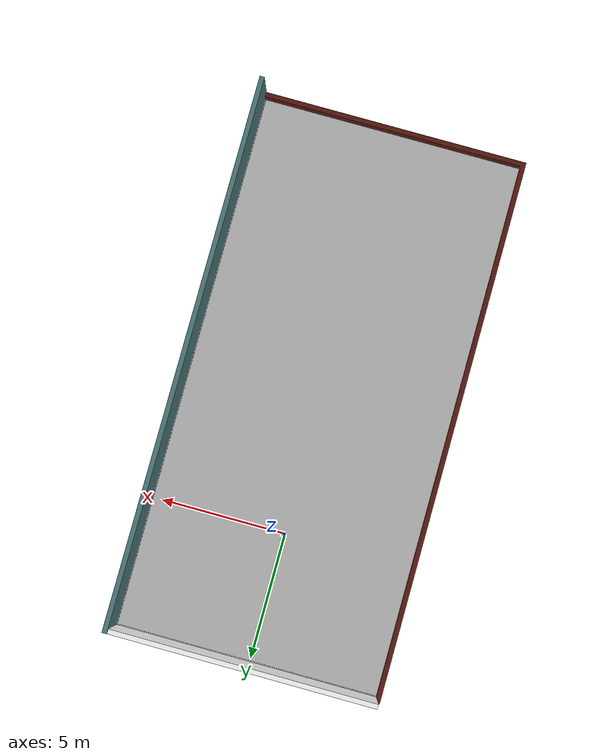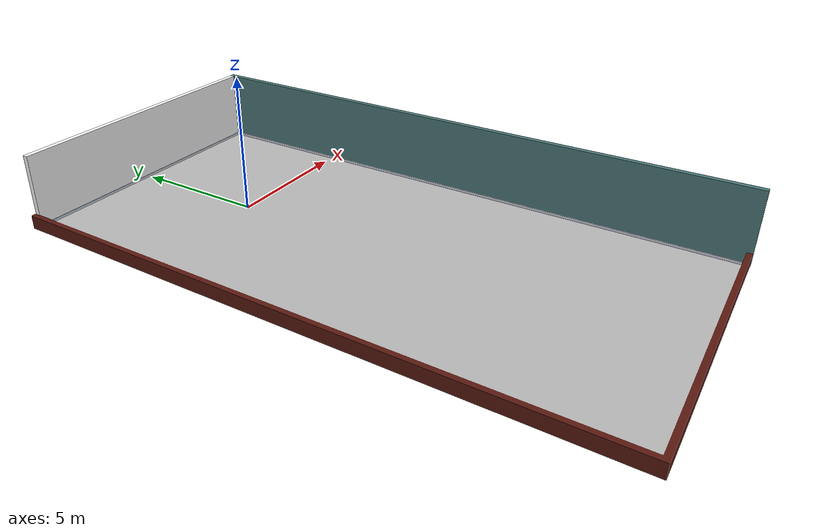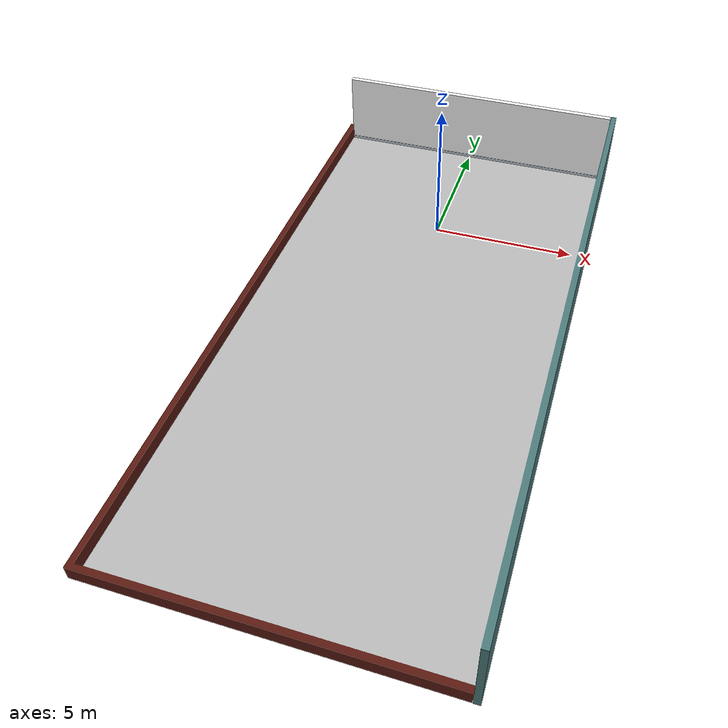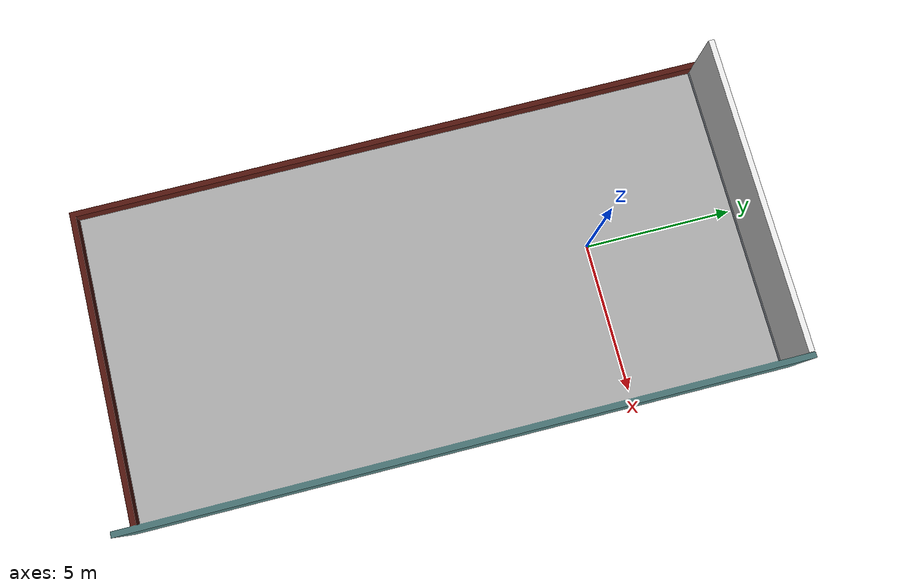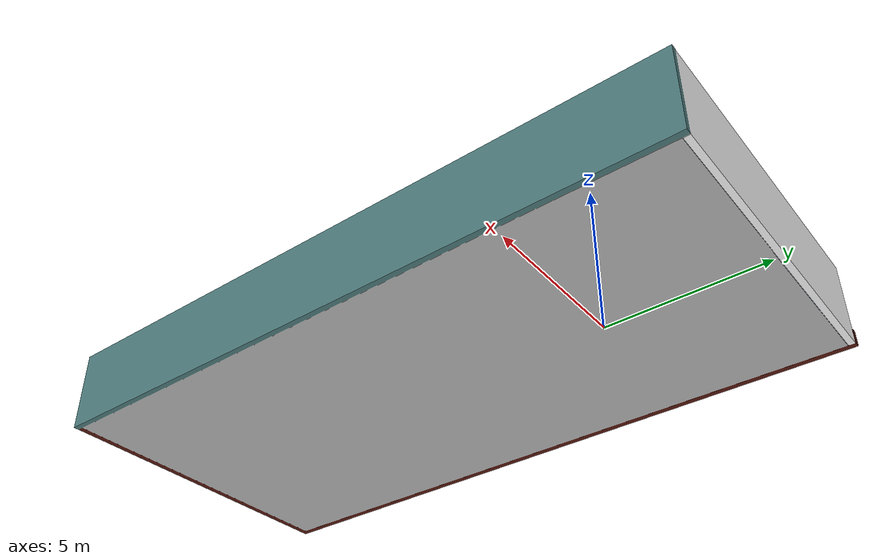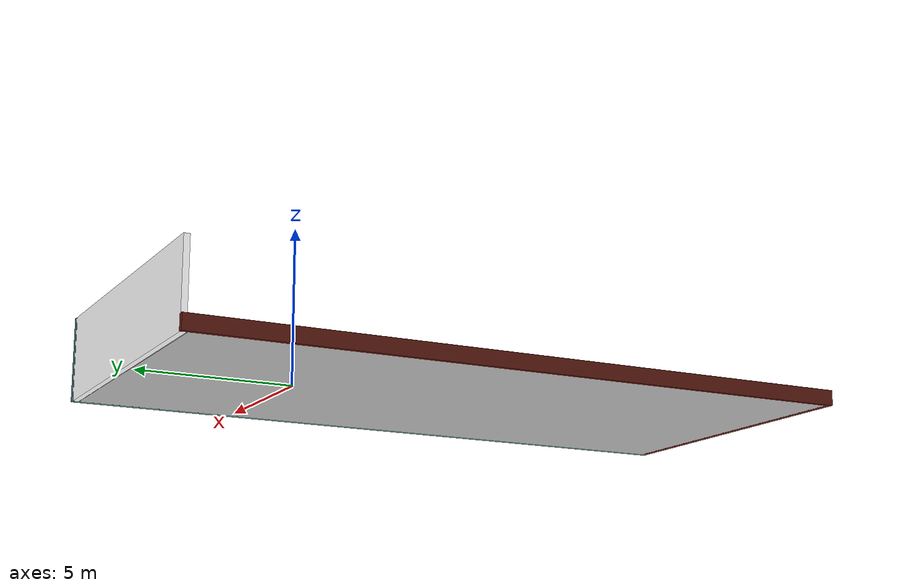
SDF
<?xml version='1.0'?>
<sdf version="1.6">
<model name="simple_house">
  <static>true</static>
    <link name="link">
      <collision name="base_casa">
         <geometry>
          <mesh>
            <uri>model://cuarto/meshes/house_collision.dae</uri>
          </mesh>
        </geometry>
      </collision>

      <visual name="visual">
        <geometry>
          <mesh>
            <uri>model://cuarto/meshes/house.dae</uri>
          </mesh>
        </geometry>
      </visual>
    </link>
  </model>
</sdf>
